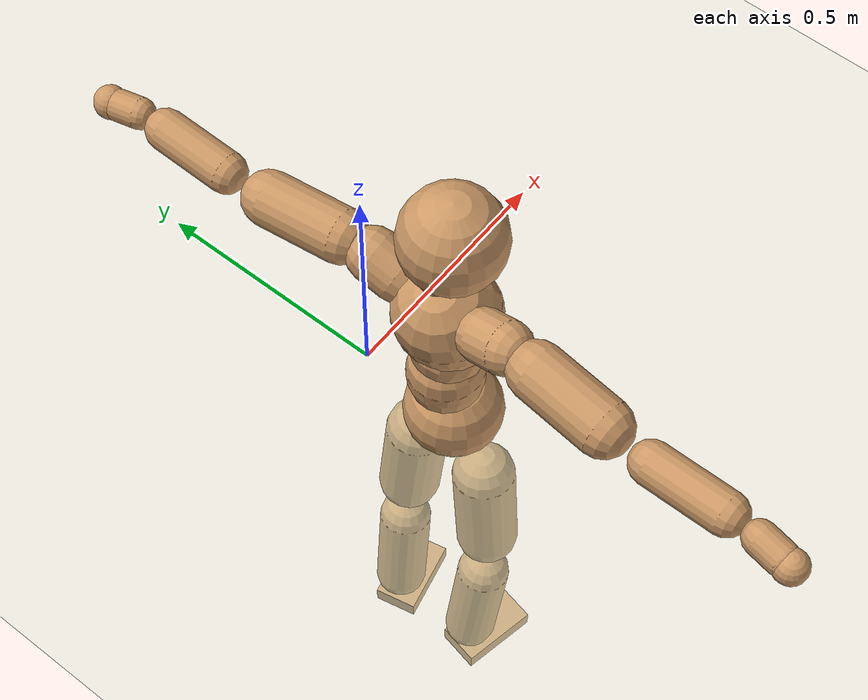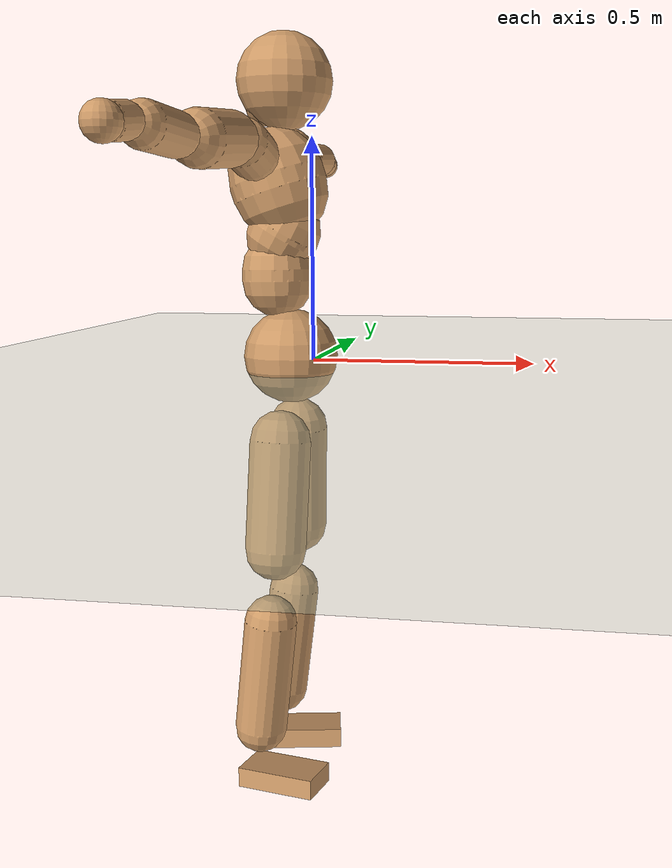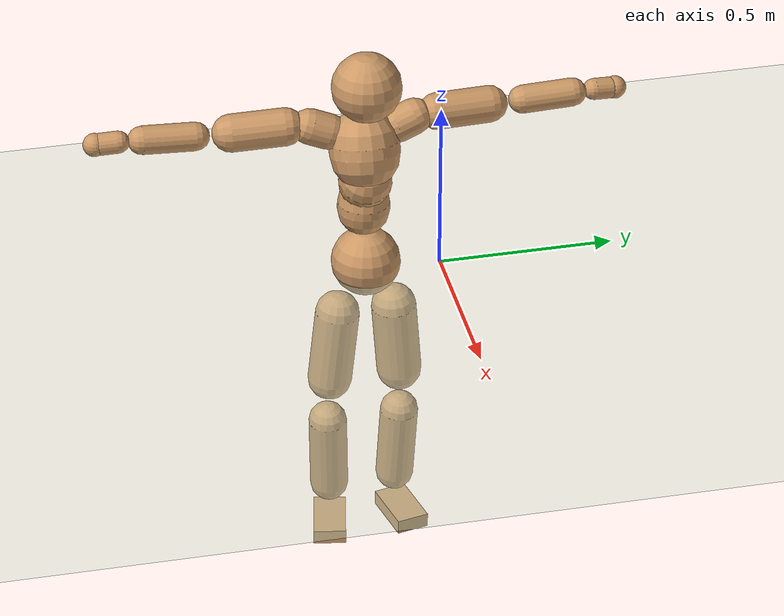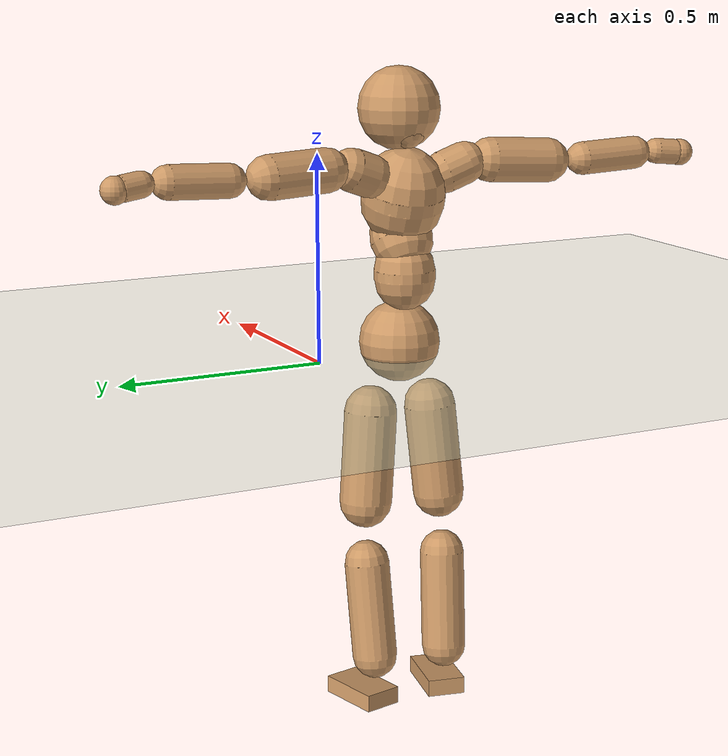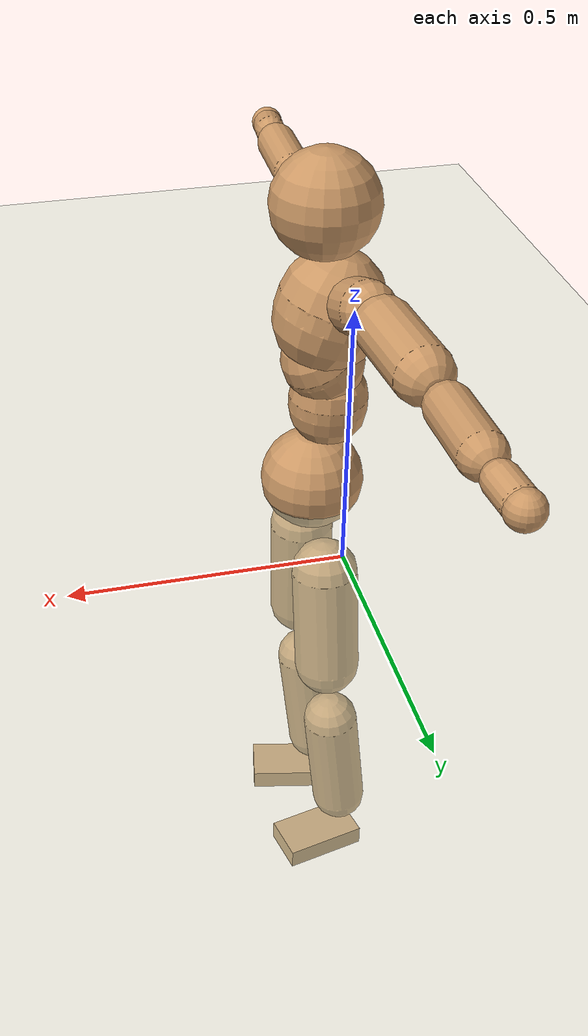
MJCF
<mujoco model="humanoid">
  <compiler coordinate="local"/>
  <default>
    <joint damping="0.0" armature="0.01" stiffness="0.0" limited="true"/>
    <geom conaffinity="1" condim="3" contype="7" margin="0.001" rgba="0.8 0.6 .4 1"/>
  </default>
  <asset>
    <texture type="skybox" builtin="gradient" rgb1=".4 .5 .6" rgb2="0 0 0" width="100" height="100"/>
    <texture builtin="flat" height="1278" mark="cross" markrgb="1 1 1" name="texgeom" random="0.01" rgb1="0.8 0.6 0.4" rgb2="0.8 0.6 0.4" type="cube" width="127"/>
    <texture builtin="checker" height="100" name="texplane" rgb1="0 0 0" rgb2="0.8 0.8 0.8" type="2d" width="100"/>
    <material name="MatPlane" reflectance="0.5" shininess="1" specular="1" texrepeat="60 60" texture="texplane"/>
    <material name="geom" texture="texgeom" texuniform="true"/>
  </asset>
  <worldbody>
    <light cutoff="100" diffuse="1 1 1" dir="-0 0 -1.3" directional="true" exponent="1" pos="0 0 1.3" specular=".1 .1 .1"/>
    <geom conaffinity="1" condim="3" name="floor" pos="0 0 0" rgba="0.8 0.9 0.8 1" size="100 100 .2" type="plane" material="MatPlane"/>
    <body name="Pelvis" pos="0.0007 -0.2143 0.0338">
      <freejoint name="Pelvis"/>
      <geom type="sphere" contype="1" conaffinity="1" density="500" size="0.0987" pos="0.0000 0.0000 0.0000" name="Pelvis"/>
      <body name="L_Hip" pos="-0.0055 0.0767 -0.0925">
        <joint name="L_Hip_x" type="hinge" pos="0 0 0" axis="1 0 0" stiffness="800" damping="80" armature="0.02" range="-180.0000 180.0000"/>
        <joint name="L_Hip_y" type="hinge" pos="0 0 0" axis="0 1 0" stiffness="800" damping="80" armature="0.02" range="-180.0000 180.0000"/>
        <joint name="L_Hip_z" type="hinge" pos="0 0 0" axis="0 0 1" stiffness="800" damping="80" armature="0.02" range="-180.0000 180.0000"/>
        <geom type="capsule" contype="1" conaffinity="1" density="500" fromto="-0.0022 0.0059 -0.0745 -0.0089 0.0238 -0.2982" size="0.064" name="L_Hip"/>
        <body name="L_Knee" pos="-0.0112 0.0297 -0.3727">
          <joint name="L_Knee_x" type="hinge" pos="0 0 0" axis="1 0 0" stiffness="800" damping="80" armature="0.02" range="-180.0000 180.0000"/>
          <joint name="L_Knee_y" type="hinge" pos="0 0 0" axis="0 1 0" stiffness="800" damping="80" armature="0.02" range="-180.0000 180.0000"/>
          <joint name="L_Knee_z" type="hinge" pos="0 0 0" axis="0 0 1" stiffness="800" damping="80" armature="0.02" range="-180.0000 180.0000"/>
          <geom type="capsule" contype="1" conaffinity="1" density="500" fromto="-0.0093 -0.0024 -0.0791 -0.0374 -0.0095 -0.3164" size="0.0548" name="L_Knee"/>
          <body name="L_Ankle" pos="-0.0467 -0.0118 -0.3955">
            <joint name="L_Ankle_x" type="hinge" pos="0 0 0" axis="1 0 0" stiffness="800" damping="80" armature="0.02" range="-180.0000 180.0000"/>
            <joint name="L_Ankle_y" type="hinge" pos="0 0 0" axis="0 1 0" stiffness="800" damping="80" armature="0.02" range="-180.0000 180.0000"/>
            <joint name="L_Ankle_z" type="hinge" pos="0 0 0" axis="0 0 1" stiffness="800" damping="80" armature="0.02" range="-180.0000 180.0000"/>
            <geom type="box" contype="1" conaffinity="1" density="500" pos="0.0581 0.0125 -0.0282" size="0.0827 0.0469 0.0211" quat="0.9944 0.0000 0.0000 0.1058" name="L_Ankle"/>
            <body name="L_Toe" pos="0.1162 0.025 -0.0564">
              <joint name="L_Toe_x" type="hinge" pos="0 0 0" axis="1 0 0" stiffness="500" damping="50" armature="0.02" range="-180.0000 180.0000"/>
              <joint name="L_Toe_y" type="hinge" pos="0 0 0" axis="0 1 0" stiffness="500" damping="50" armature="0.02" range="-180.0000 180.0000"/>
              <joint name="L_Toe_z" type="hinge" pos="0 0 0" axis="0 0 1" stiffness="500" damping="50" armature="0.02" range="-180.0000 180.0000"/>
              <geom type="box" contype="1" conaffinity="1" density="500" pos="0.0000 0.0000 0.0274" size="0.001 0.0023 0.001" quat="0.9937 0.0000 0.0000 0.1121" name="L_Toe"/>
            </body>
          </body>
        </body>
      </body>
      <body name="R_Hip" pos="-0.0019 -0.0741 -0.0923">
        <joint name="R_Hip_x" type="hinge" pos="0 0 0" axis="1 0 0" stiffness="800" damping="80" armature="0.02" range="-180.0000 180.0000"/>
        <joint name="R_Hip_y" type="hinge" pos="0 0 0" axis="0 1 0" stiffness="800" damping="80" armature="0.02" range="-180.0000 180.0000"/>
        <joint name="R_Hip_z" type="hinge" pos="0 0 0" axis="0 0 1" stiffness="800" damping="80" armature="0.02" range="-180.0000 180.0000"/>
        <geom type="capsule" contype="1" conaffinity="1" density="500" fromto="-0.0026 -0.0072 -0.0758 -0.0103 -0.0290 -0.3032" size="0.0632" name="R_Hip"/>
        <body name="R_Knee" pos="-0.0129 -0.0362 -0.379">
          <joint name="R_Knee_x" type="hinge" pos="0 0 0" axis="1 0 0" stiffness="800" damping="80" armature="0.02" range="-180.0000 180.0000"/>
          <joint name="R_Knee_y" type="hinge" pos="0 0 0" axis="0 1 0" stiffness="800" damping="80" armature="0.02" range="-180.0000 180.0000"/>
          <joint name="R_Knee_z" type="hinge" pos="0 0 0" axis="0 0 1" stiffness="800" damping="80" armature="0.02" range="-180.0000 180.0000"/>
          <geom type="capsule" contype="1" conaffinity="1" density="500" fromto="-0.0090 0.0029 -0.0795 -0.0361 0.0116 -0.3180" size="0.055" name="R_Knee"/>
          <body name="R_Ankle" pos="-0.0452 0.0145 -0.3974">
            <joint name="R_Ankle_x" type="hinge" pos="0 0 0" axis="1 0 0" stiffness="800" damping="80" armature="0.02" range="-180.0000 180.0000"/>
            <joint name="R_Ankle_y" type="hinge" pos="0 0 0" axis="0 1 0" stiffness="800" damping="80" armature="0.02" range="-180.0000 180.0000"/>
            <joint name="R_Ankle_z" type="hinge" pos="0 0 0" axis="0 0 1" stiffness="800" damping="80" armature="0.02" range="-180.0000 180.0000"/>
            <geom type="box" contype="1" conaffinity="1" density="500" pos="0.0601 -0.0123 -0.0244" size="0.0845 0.0468 0.021" quat="0.9949 0.0000 0.0000 -0.1007" name="R_Ankle"/>
            <body name="R_Toe" pos="0.1202 -0.0246 -0.0488">
              <joint name="R_Toe_x" type="hinge" pos="0 0 0" axis="1 0 0" stiffness="500" damping="50" armature="0.02" range="-180.0000 180.0000"/>
              <joint name="R_Toe_y" type="hinge" pos="0 0 0" axis="0 1 0" stiffness="500" damping="50" armature="0.02" range="-180.0000 180.0000"/>
              <joint name="R_Toe_z" type="hinge" pos="0 0 0" axis="0 0 1" stiffness="500" damping="50" armature="0.02" range="-180.0000 180.0000"/>
              <geom type="box" contype="1" conaffinity="1" density="500" pos="0.0000 0.0000 0.0256" size="0.0009 0.0023 0.0011" quat="0.9958 0.0000 0.0000 -0.0912" name="R_Toe"/>
            </body>
          </body>
        </body>
      </body>
      <body name="Torso" pos="-0.0257 -0.0017 0.1066">
        <joint name="Torso_x" type="hinge" pos="0 0 0" axis="1 0 0" stiffness="1000" damping="100" armature="0.02" range="-180.0000 180.0000"/>
        <joint name="Torso_y" type="hinge" pos="0 0 0" axis="0 1 0" stiffness="1000" damping="100" armature="0.02" range="-180.0000 180.0000"/>
        <joint name="Torso_z" type="hinge" pos="0 0 0" axis="0 0 1" stiffness="1000" damping="100" armature="0.02" range="-180.0000 180.0000"/>
        <geom type="capsule" contype="1" conaffinity="1" density="500" fromto="-0.0012 0.0015 0.0737 -0.0008 0.0010 0.0492" size="0.0741" name="Torso"/>
        <body name="Spine" pos="-0.0021 0.0024 0.1229">
          <joint name="Spine_x" type="hinge" pos="0 0 0" axis="1 0 0" stiffness="1000" damping="100" armature="0.02" range="-180.0000 180.0000"/>
          <joint name="Spine_y" type="hinge" pos="0 0 0" axis="0 1 0" stiffness="1000" damping="100" armature="0.02" range="-180.0000 180.0000"/>
          <joint name="Spine_z" type="hinge" pos="0 0 0" axis="0 0 1" stiffness="1000" damping="100" armature="0.02" range="-180.0000 180.0000"/>
          <geom type="capsule" contype="1" conaffinity="1" density="500" fromto="0.0178 0.0008 0.0298 0.0119 0.0006 0.0198" size="0.0755" name="Spine"/>
          <body name="Chest" pos="0.0297 0.0014 0.0496">
            <joint name="Chest_x" type="hinge" pos="0 0 0" axis="1 0 0" stiffness="1000" damping="100" armature="0.02" range="-180.0000 180.0000"/>
            <joint name="Chest_y" type="hinge" pos="0 0 0" axis="0 1 0" stiffness="1000" damping="100" armature="0.02" range="-180.0000 180.0000"/>
            <joint name="Chest_z" type="hinge" pos="0 0 0" axis="0 0 1" stiffness="1000" damping="100" armature="0.02" range="-180.0000 180.0000"/>
            <geom type="capsule" contype="1" conaffinity="1" density="500" fromto="-0.0296 -0.0007 0.0938 -0.0197 -0.0005 0.0625" size="0.0999" name="Chest"/>
            <body name="Neck" pos="-0.0595 -0.0015 0.2212">
              <joint name="Neck_x" type="hinge" pos="0 0 0" axis="1 0 0" stiffness="500" damping="50" armature="0.02" range="-180.0000 180.0000"/>
              <joint name="Neck_y" type="hinge" pos="0 0 0" axis="0 1 0" stiffness="500" damping="50" armature="0.02" range="-180.0000 180.0000"/>
              <joint name="Neck_z" type="hinge" pos="0 0 0" axis="0 0 1" stiffness="500" damping="50" armature="0.02" range="-180.0000 180.0000"/>
              <geom type="capsule" contype="1" conaffinity="1" density="500" fromto="0.0100 0.0008 0.0124 0.0400 0.0031 0.0496" size="0.0418" name="Neck"/>
              <body name="Head" pos="0.0501 0.0039 0.062">
                <joint name="Head_x" type="hinge" pos="0 0 0" axis="1 0 0" stiffness="500" damping="50" armature="0.02" range="-180.0000 180.0000"/>
                <joint name="Head_y" type="hinge" pos="0 0 0" axis="0 1 0" stiffness="500" damping="50" armature="0.02" range="-180.0000 180.0000"/>
                <joint name="Head_z" type="hinge" pos="0 0 0" axis="0 0 1" stiffness="500" damping="50" armature="0.02" range="-180.0000 180.0000"/>
                <geom type="sphere" contype="1" conaffinity="1" density="500" size="0.0990" pos="0.0000 0.0000 0.0000" name="Head"/>
              </body>
            </body>
            <body name="L_Thorax" pos="-0.0416 0.0768 0.1246">
              <joint name="L_Thorax_x" type="hinge" pos="0 0 0" axis="1 0 0" stiffness="500" damping="50" armature="0.02" range="-180.0000 180.0000"/>
              <joint name="L_Thorax_y" type="hinge" pos="0 0 0" axis="0 1 0" stiffness="500" damping="50" armature="0.02" range="-180.0000 180.0000"/>
              <joint name="L_Thorax_z" type="hinge" pos="0 0 0" axis="0 0 1" stiffness="500" damping="50" armature="0.02" range="-180.0000 180.0000"/>
              <geom type="capsule" contype="1" conaffinity="1" density="500" fromto="-0.0015 0.0170 0.0062 -0.0060 0.0681 0.0250" size="0.0515" name="L_Thorax"/>
              <body name="L_Shoulder" pos="-0.0075 0.0851 0.0312">
                <joint name="L_Shoulder_x" type="hinge" pos="0 0 0" axis="1 0 0" stiffness="500" damping="50" armature="0.02" range="-720.0000 720.0000"/>
                <joint name="L_Shoulder_y" type="hinge" pos="0 0 0" axis="0 1 0" stiffness="500" damping="50" armature="0.02" range="-720.0000 720.0000"/>
                <joint name="L_Shoulder_z" type="hinge" pos="0 0 0" axis="0 0 1" stiffness="500" damping="50" armature="0.02" range="-720.0000 720.0000"/>
                <geom type="capsule" contype="1" conaffinity="1" density="500" fromto="-0.0052 0.0506 -0.0020 -0.0209 0.2022 -0.0078" size="0.0525" name="L_Shoulder"/>
                <body name="L_Elbow" pos="-0.0261 0.2528 -0.0098">
                  <joint name="L_Elbow_x" type="hinge" pos="0 0 0" axis="1 0 0" stiffness="500" damping="50" armature="0.02" range="-720.0000 720.0000"/>
                  <joint name="L_Elbow_y" type="hinge" pos="0 0 0" axis="0 1 0" stiffness="500" damping="50" armature="0.02" range="-720.0000 720.0000"/>
                  <joint name="L_Elbow_z" type="hinge" pos="0 0 0" axis="0 0 1" stiffness="500" damping="50" armature="0.02" range="-720.0000 720.0000"/>
                  <geom type="capsule" contype="1" conaffinity="1" density="500" fromto="0.0001 0.0475 0.0019 0.0003 0.1901 0.0075" size="0.0401" name="L_Elbow"/>
                  <body name="L_Wrist" pos="0.0004 0.2376 0.0094">
                    <joint name="L_Wrist_x" type="hinge" pos="0 0 0" axis="1 0 0" stiffness="300" damping="30" armature="0.02" range="-180.0000 180.0000"/>
                    <joint name="L_Wrist_y" type="hinge" pos="0 0 0" axis="0 1 0" stiffness="300" damping="30" armature="0.02" range="-180.0000 180.0000"/>
                    <joint name="L_Wrist_z" type="hinge" pos="0 0 0" axis="0 0 1" stiffness="300" damping="30" armature="0.02" range="-180.0000 180.0000"/>
                    <geom type="capsule" contype="1" conaffinity="1" density="500" fromto="-0.0026 0.0159 -0.0019 -0.0105 0.0637 -0.0077" size="0.0303" name="L_Wrist"/>
                    <body name="L_Hand" pos="-0.0131 0.0796 -0.0096">
                      <joint name="L_Hand_x" type="hinge" pos="0 0 0" axis="1 0 0" stiffness="300" damping="30" armature="0.02" range="-180.0000 180.0000"/>
                      <joint name="L_Hand_y" type="hinge" pos="0 0 0" axis="0 1 0" stiffness="300" damping="30" armature="0.02" range="-180.0000 180.0000"/>
                      <joint name="L_Hand_z" type="hinge" pos="0 0 0" axis="0 0 1" stiffness="300" damping="30" armature="0.02" range="-180.0000 180.0000"/>
                      <geom type="sphere" contype="1" conaffinity="1" density="500" size="0.0322" pos="0.0000 0.0000 0.0000" name="L_Hand"/>
                    </body>
                  </body>
                </body>
              </body>
            </body>
            <body name="R_Thorax" pos="-0.0468 -0.079 0.123">
              <joint name="R_Thorax_x" type="hinge" pos="0 0 0" axis="1 0 0" stiffness="500" damping="50" armature="0.02" range="-180.0000 180.0000"/>
              <joint name="R_Thorax_y" type="hinge" pos="0 0 0" axis="0 1 0" stiffness="500" damping="50" armature="0.02" range="-180.0000 180.0000"/>
              <joint name="R_Thorax_z" type="hinge" pos="0 0 0" axis="0 0 1" stiffness="500" damping="50" armature="0.02" range="-180.0000 180.0000"/>
              <geom type="capsule" contype="1" conaffinity="1" density="500" fromto="-0.0018 -0.0177 0.0068 -0.0073 -0.0709 0.0273" size="0.0507" name="R_Thorax"/>
              <body name="R_Shoulder" pos="-0.0091 -0.0887 0.0341">
                <joint name="R_Shoulder_x" type="hinge" pos="0 0 0" axis="1 0 0" stiffness="500" damping="50" armature="0.02" range="-720.0000 720.0000"/>
                <joint name="R_Shoulder_y" type="hinge" pos="0 0 0" axis="0 1 0" stiffness="500" damping="50" armature="0.02" range="-720.0000 720.0000"/>
                <joint name="R_Shoulder_z" type="hinge" pos="0 0 0" axis="0 0 1" stiffness="500" damping="50" armature="0.02" range="-720.0000 720.0000"/>
                <geom type="capsule" contype="1" conaffinity="1" density="500" fromto="-0.0042 -0.0500 -0.0029 -0.0167 -0.1999 -0.0115" size="0.0542" name="R_Shoulder"/>
                <body name="R_Elbow" pos="-0.0208 -0.2499 -0.0143">
                  <joint name="R_Elbow_x" type="hinge" pos="0 0 0" axis="1 0 0" stiffness="500" damping="50" armature="0.02" range="-720.0000 720.0000"/>
                  <joint name="R_Elbow_y" type="hinge" pos="0 0 0" axis="0 1 0" stiffness="500" damping="50" armature="0.02" range="-720.0000 720.0000"/>
                  <joint name="R_Elbow_z" type="hinge" pos="0 0 0" axis="0 0 1" stiffness="500" damping="50" armature="0.02" range="-720.0000 720.0000"/>
                  <geom type="capsule" contype="1" conaffinity="1" density="500" fromto="-0.0007 -0.0495 0.0020 -0.0026 -0.1980 0.0080" size="0.0405" name="R_Elbow"/>
                  <body name="R_Wrist" pos="-0.0033 -0.2475 0.0101">
                    <joint name="R_Wrist_x" type="hinge" pos="0 0 0" axis="1 0 0" stiffness="300" damping="30" armature="0.02" range="-180.0000 180.0000"/>
                    <joint name="R_Wrist_y" type="hinge" pos="0 0 0" axis="0 1 0" stiffness="300" damping="30" armature="0.02" range="-180.0000 180.0000"/>
                    <joint name="R_Wrist_z" type="hinge" pos="0 0 0" axis="0 0 1" stiffness="300" damping="30" armature="0.02" range="-180.0000 180.0000"/>
                    <geom type="capsule" contype="1" conaffinity="1" density="500" fromto="-0.0021 -0.0163 -0.0015 -0.0085 -0.0652 -0.0059" size="0.0314" name="R_Wrist"/>
                    <body name="R_Hand" pos="-0.0106 -0.0815 -0.0073">
                      <joint name="R_Hand_x" type="hinge" pos="0 0 0" axis="1 0 0" stiffness="300" damping="30" armature="0.02" range="-180.0000 180.0000"/>
                      <joint name="R_Hand_y" type="hinge" pos="0 0 0" axis="0 1 0" stiffness="300" damping="30" armature="0.02" range="-180.0000 180.0000"/>
                      <joint name="R_Hand_z" type="hinge" pos="0 0 0" axis="0 0 1" stiffness="300" damping="30" armature="0.02" range="-180.0000 180.0000"/>
                      <geom type="sphere" contype="1" conaffinity="1" density="500" size="0.0328" pos="0.0000 0.0000 0.0000" name="R_Hand"/>
                    </body>
                  </body>
                </body>
              </body>
            </body>
          </body>
        </body>
      </body>
    </body>
  </worldbody>
  <actuator>
    <motor name="L_Hip_x" joint="L_Hip_x" gear="500"/>
    <motor name="L_Hip_y" joint="L_Hip_y" gear="500"/>
    <motor name="L_Hip_z" joint="L_Hip_z" gear="500"/>
    <motor name="L_Knee_x" joint="L_Knee_x" gear="500"/>
    <motor name="L_Knee_y" joint="L_Knee_y" gear="500"/>
    <motor name="L_Knee_z" joint="L_Knee_z" gear="500"/>
    <motor name="L_Ankle_x" joint="L_Ankle_x" gear="500"/>
    <motor name="L_Ankle_y" joint="L_Ankle_y" gear="500"/>
    <motor name="L_Ankle_z" joint="L_Ankle_z" gear="500"/>
    <motor name="L_Toe_x" joint="L_Toe_x" gear="500"/>
    <motor name="L_Toe_y" joint="L_Toe_y" gear="500"/>
    <motor name="L_Toe_z" joint="L_Toe_z" gear="500"/>
    <motor name="R_Hip_x" joint="R_Hip_x" gear="500"/>
    <motor name="R_Hip_y" joint="R_Hip_y" gear="500"/>
    <motor name="R_Hip_z" joint="R_Hip_z" gear="500"/>
    <motor name="R_Knee_x" joint="R_Knee_x" gear="500"/>
    <motor name="R_Knee_y" joint="R_Knee_y" gear="500"/>
    <motor name="R_Knee_z" joint="R_Knee_z" gear="500"/>
    <motor name="R_Ankle_x" joint="R_Ankle_x" gear="500"/>
    <motor name="R_Ankle_y" joint="R_Ankle_y" gear="500"/>
    <motor name="R_Ankle_z" joint="R_Ankle_z" gear="500"/>
    <motor name="R_Toe_x" joint="R_Toe_x" gear="500"/>
    <motor name="R_Toe_y" joint="R_Toe_y" gear="500"/>
    <motor name="R_Toe_z" joint="R_Toe_z" gear="500"/>
    <motor name="Torso_x" joint="Torso_x" gear="500"/>
    <motor name="Torso_y" joint="Torso_y" gear="500"/>
    <motor name="Torso_z" joint="Torso_z" gear="500"/>
    <motor name="Spine_x" joint="Spine_x" gear="500"/>
    <motor name="Spine_y" joint="Spine_y" gear="500"/>
    <motor name="Spine_z" joint="Spine_z" gear="500"/>
    <motor name="Chest_x" joint="Chest_x" gear="500"/>
    <motor name="Chest_y" joint="Chest_y" gear="500"/>
    <motor name="Chest_z" joint="Chest_z" gear="500"/>
    <motor name="Neck_x" joint="Neck_x" gear="500"/>
    <motor name="Neck_y" joint="Neck_y" gear="500"/>
    <motor name="Neck_z" joint="Neck_z" gear="500"/>
    <motor name="Head_x" joint="Head_x" gear="500"/>
    <motor name="Head_y" joint="Head_y" gear="500"/>
    <motor name="Head_z" joint="Head_z" gear="500"/>
    <motor name="L_Thorax_x" joint="L_Thorax_x" gear="500"/>
    <motor name="L_Thorax_y" joint="L_Thorax_y" gear="500"/>
    <motor name="L_Thorax_z" joint="L_Thorax_z" gear="500"/>
    <motor name="L_Shoulder_x" joint="L_Shoulder_x" gear="500"/>
    <motor name="L_Shoulder_y" joint="L_Shoulder_y" gear="500"/>
    <motor name="L_Shoulder_z" joint="L_Shoulder_z" gear="500"/>
    <motor name="L_Elbow_x" joint="L_Elbow_x" gear="500"/>
    <motor name="L_Elbow_y" joint="L_Elbow_y" gear="500"/>
    <motor name="L_Elbow_z" joint="L_Elbow_z" gear="500"/>
    <motor name="L_Wrist_x" joint="L_Wrist_x" gear="500"/>
    <motor name="L_Wrist_y" joint="L_Wrist_y" gear="500"/>
    <motor name="L_Wrist_z" joint="L_Wrist_z" gear="500"/>
    <motor name="L_Hand_x" joint="L_Hand_x" gear="500"/>
    <motor name="L_Hand_y" joint="L_Hand_y" gear="500"/>
    <motor name="L_Hand_z" joint="L_Hand_z" gear="500"/>
    <motor name="R_Thorax_x" joint="R_Thorax_x" gear="500"/>
    <motor name="R_Thorax_y" joint="R_Thorax_y" gear="500"/>
    <motor name="R_Thorax_z" joint="R_Thorax_z" gear="500"/>
    <motor name="R_Shoulder_x" joint="R_Shoulder_x" gear="500"/>
    <motor name="R_Shoulder_y" joint="R_Shoulder_y" gear="500"/>
    <motor name="R_Shoulder_z" joint="R_Shoulder_z" gear="500"/>
    <motor name="R_Elbow_x" joint="R_Elbow_x" gear="500"/>
    <motor name="R_Elbow_y" joint="R_Elbow_y" gear="500"/>
    <motor name="R_Elbow_z" joint="R_Elbow_z" gear="500"/>
    <motor name="R_Wrist_x" joint="R_Wrist_x" gear="500"/>
    <motor name="R_Wrist_y" joint="R_Wrist_y" gear="500"/>
    <motor name="R_Wrist_z" joint="R_Wrist_z" gear="500"/>
    <motor name="R_Hand_x" joint="R_Hand_x" gear="500"/>
    <motor name="R_Hand_y" joint="R_Hand_y" gear="500"/>
    <motor name="R_Hand_z" joint="R_Hand_z" gear="500"/>
  </actuator>
  <contact>
    <exclude body1="Torso" body2="Chest"/>
    <exclude body1="Head" body2="Chest"/>
    <exclude body1="R_Knee" body2="R_Toe"/>
    <exclude body1="R_Knee" body2="L_Ankle"/>
    <exclude body1="R_Knee" body2="L_Toe"/>
    <exclude body1="L_Knee" body2="L_Toe"/>
    <exclude body1="L_Knee" body2="R_Ankle"/>
    <exclude body1="L_Knee" body2="R_Toe"/>
    <exclude body1="L_Shoulder" body2="Chest"/>
    <exclude body1="R_Shoulder" body2="Chest"/>
  </contact>
  <sensor/>
  <size njmax="700" nconmax="700"/>
</mujoco>
